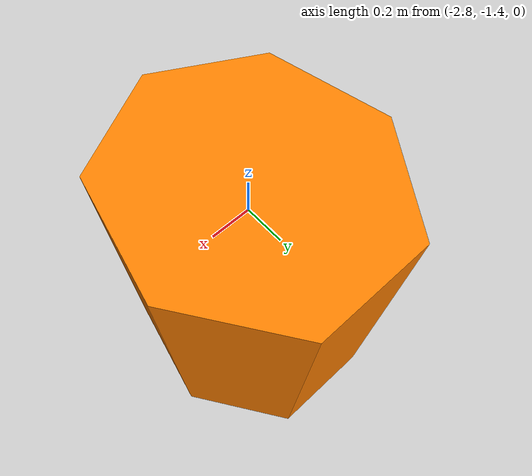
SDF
<?xml version="1.0" ?>
<sdf version="1.5">

  <model name="obstacle_3">
  <static>true</static>
  <link name="link">
    <pose>0.37 12.5 0 0 0 0</pose>
    <collision name="collision">
      <geometry>
        <mesh>
          <uri>model://obstacle_3/mesh/obstacle_3.stl</uri>
          <scale>0.9 0.9 0.1</scale>
        </mesh>
      </geometry>
    </collision>
    <visual name="visual">
      <cast_shadows>true</cast_shadows>
      <geometry>
        <mesh>
          <uri>model://obstacle_3/mesh/obstacle_3.stl</uri>
          <scale>0.9 0.9 0.1</scale>
        </mesh>
      </geometry>
      <material>
        <ambient>1 0.5 0 1</ambient>
        <diffuse>1 0.5 0 1</diffuse>
        <specular>0 0 0 0</specular>
      </material>
    </visual>
  </link>
</model>
</sdf>
